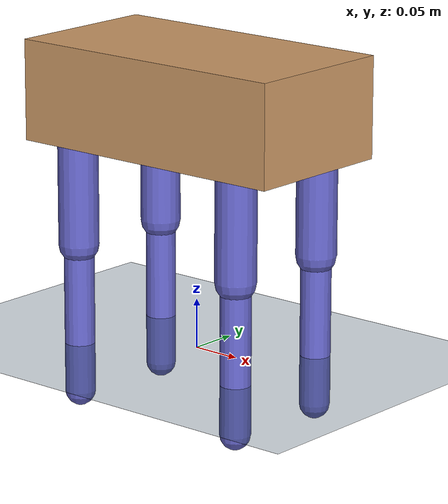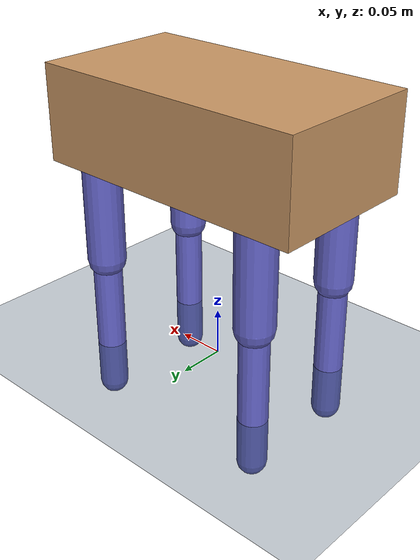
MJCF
<mujoco model="scene_simple_quad">
  <option timestep="0.002" gravity="0 0 -9.81"/>
  <visual>
    <headlight diffuse="0.6 0.6 0.6" ambient="0.3 0.3 0.3" specular="0 0 0"/>
    <rgba haze="0.15 0.25 0.35 1"/>
  </visual>
  <asset>
    <texture type="skybox" builtin="gradient" rgb1="0.3 0.5 0.7" rgb2="0 0 0" width="512" height="3072"/>
    <texture type="2d" name="groundplane" builtin="checker" mark="edge"
             rgb1="0.2 0.3 0.4" rgb2="0.1 0.2 0.3" markrgb="0.8 0.8 0.8"
             width="300" height="300"/>
    <material name="ground_mat" texture="groundplane" texuniform="true"
              texrepeat="5 5" reflectance="0.2"/>
    <material name="body_mat" rgba="0.8 0.6 0.4 1"/>
    <material name="leg_mat" rgba="0.4 0.4 0.8 1"/>
  </asset>

  <worldbody>
    <geom name="floor" type="plane" size="0 0 0.05"
          material="ground_mat" condim="3"/>

    <body name="base" pos="0 0 0.25">
      <freejoint name="base_free"/>
      <geom type="box" size="0.15 0.08 0.05" material="body_mat"/>

      <body name="leg_FL" pos="0.1 0.06 0">
        <joint name="hip_FL" type="hinge" axis="0 1 0" range="-0.5 0.5"/>
        <geom type="capsule" fromto="0 0 0 0 0 -0.15" size="0.02" material="leg_mat"/>
        <body name="shin_FL" pos="0 0 -0.15">
          <joint name="knee_FL" type="hinge" axis="0 1 0" range="-1.5 0"/>
          <geom type="capsule" fromto="0 0 0 0 0 -0.15" size="0.015" material="leg_mat"/>
        </body>
      </body>

      <body name="leg_FR" pos="0.1 -0.06 0">
        <joint name="hip_FR" type="hinge" axis="0 1 0" range="-0.5 0.5"/>
        <geom type="capsule" fromto="0 0 0 0 0 -0.15" size="0.02" material="leg_mat"/>
        <body name="shin_FR" pos="0 0 -0.15">
          <joint name="knee_FR" type="hinge" axis="0 1 0" range="-1.5 0"/>
          <geom type="capsule" fromto="0 0 0 0 0 -0.15" size="0.015" material="leg_mat"/>
        </body>
      </body>

      <body name="leg_RL" pos="-0.1 0.06 0">
        <joint name="hip_RL" type="hinge" axis="0 1 0" range="-0.5 0.5"/>
        <geom type="capsule" fromto="0 0 0 0 0 -0.15" size="0.02" material="leg_mat"/>
        <body name="shin_RL" pos="0 0 -0.15">
          <joint name="knee_RL" type="hinge" axis="0 1 0" range="-1.5 0"/>
          <geom type="capsule" fromto="0 0 0 0 0 -0.15" size="0.015" material="leg_mat"/>
        </body>
      </body>

      <body name="leg_RR" pos="-0.1 -0.06 0">
        <joint name="hip_RR" type="hinge" axis="0 1 0" range="-0.5 0.5"/>
        <geom type="capsule" fromto="0 0 0 0 0 -0.15" size="0.02" material="leg_mat"/>
        <body name="shin_RR" pos="0 0 -0.15">
          <joint name="knee_RR" type="hinge" axis="0 1 0" range="-1.5 0"/>
          <geom type="capsule" fromto="0 0 0 0 0 -0.15" size="0.015" material="leg_mat"/>
        </body>
      </body>

    </body>
  </worldbody>

  <actuator>
    <motor name="hip_FL" joint="hip_FL" ctrlrange="-1 1" gear="100"/>
    <motor name="knee_FL" joint="knee_FL" ctrlrange="-1 1" gear="100"/>
    <motor name="hip_FR" joint="hip_FR" ctrlrange="-1 1" gear="100"/>
    <motor name="knee_FR" joint="knee_FR" ctrlrange="-1 1" gear="100"/>
    <motor name="hip_RL" joint="hip_RL" ctrlrange="-1 1" gear="100"/>
    <motor name="knee_RL" joint="knee_RL" ctrlrange="-1 1" gear="100"/>
    <motor name="hip_RR" joint="hip_RR" ctrlrange="-1 1" gear="100"/>
    <motor name="knee_RR" joint="knee_RR" ctrlrange="-1 1" gear="100"/>
  </actuator>
</mujoco>
